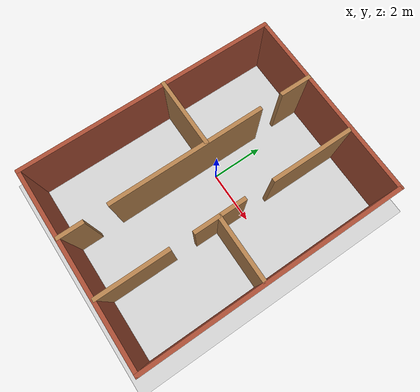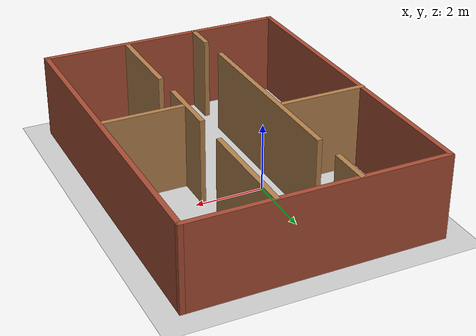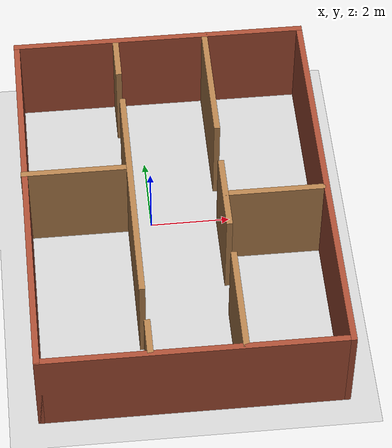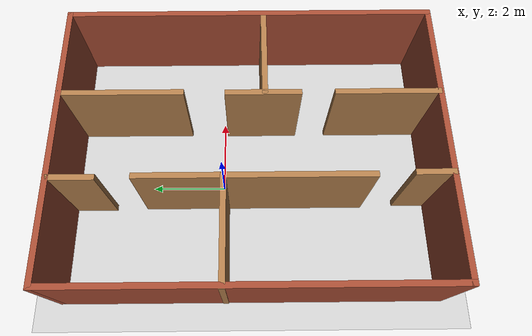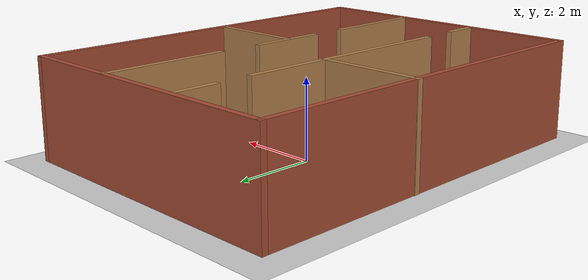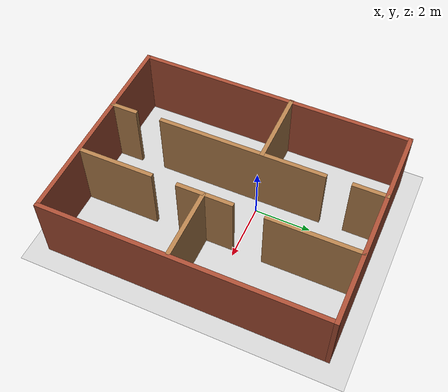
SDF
<sdf version="1.6">
 <world name="default">
  <light name="sun" type="directional">
   <pose>0 0 10 0 -0 0</pose>
   <diffuse>0.8 0.8 0.8 1</diffuse>
   <specular>0.2 0.2 0.2 1</specular>
   <attenuation>
    <range>1000</range>
    <constant>0.9</constant>
    <linear>0.01</linear>
    <quadratic>0.001</quadratic>
   </attenuation>
   <direction>-0.5 0.1 -0.9</direction>
  </light>
  <model name="ground_plane">
   <static>1</static>
   <link name="link">
    <collision name="collision">
     <geometry><plane><normal>0 0 1</normal><size>100 100</size></plane></geometry>
     <surface>
      <contact><collide_bitmask>65535</collide_bitmask></contact>
      <friction><ode><mu>100</mu><mu2>50</mu2></ode></friction>
     </surface>
    </collision>
    <visual name="visual">
     <cast_shadows>0</cast_shadows>
     <geometry><plane><normal>0 0 1</normal><size>100 100</size></plane></geometry>
     <material>
      <script><uri>file://media/materials/scripts/gazebo.material</uri><name>Gazebo/Grey</name></script>
     </material>
    </visual>
   </link>
  </model>
  <physics name="default_physics" default="0" type="ode">
   <real_time_update_rate>1000</real_time_update_rate>
   <max_step_size>0.001</max_step_size>
   <real_time_factor>1</real_time_factor>
   <ode>
    <solver>
     <type>quick</type>
     <iters>150</iters>
     <precon_iters>0</precon_iters>
     <sor>1.4</sor>
     <use_dynamic_moi_rescaling>1</use_dynamic_moi_rescaling>
    </solver>
    <constraints>
     <cfm>1e-05</cfm>
     <erp>0.2</erp>
     <contact_max_correcting_vel>2000</contact_max_correcting_vel>
     <contact_surface_layer>0.01</contact_surface_layer>
    </constraints>
   </ode>
  </physics>
  <gravity>0 0 -9.8</gravity>
  <magnetic_field>6e-06 2.3e-05 -4.2e-05</magnetic_field>
  <atmosphere type="adiabatic"/>
  <scene><ambient>0.4 0.4 0.4 1</ambient><background>0.7 0.7 0.7 1</background><shadows>1</shadows></scene>
  <spherical_coordinates>
   <surface_model>EARTH_WGS84</surface_model>
   <latitude_deg>0</latitude_deg>
   <longitude_deg>0</longitude_deg>
   <elevation>0</elevation>
   <heading_deg>0</heading_deg>
  </spherical_coordinates>
  <model name="woodbuilding">
   <pose>0.559038 -0.732635 0 0 -0 0</pose>
   <link name="Wall_0">
    <collision name="Wall_0_Collision">
     <geometry><box><size>10 0.15 2.5</size></box></geometry>
     <pose>0 0 1.25 0 -0 0</pose>
    </collision>
    <visual name="Wall_0_Visual">
     <pose>0 0 1.25 0 -0 0</pose>
     <geometry><box><size>10 0.15 2.5</size></box></geometry>
     <material>
      <script><uri>file://media/materials/scripts/gazebo.material</uri><name>Gazebo/Bricks</name></script>
      <ambient>1 1 1 1</ambient>
     </material>
     <meta><layer>0</layer></meta>
    </visual>
    <pose>-3.66563 0 0 0 0 -1.5708</pose>
   </link>
   <link name="Wall_11">
    <collision name="Wall_11_Collision">
     <geometry><box><size>1 0.15 2.5</size></box></geometry>
     <pose>0 0 1.25 0 -0 0</pose>
    </collision>
    <visual name="Wall_11_Visual">
     <pose>0 0 1.25 0 -0 0</pose>
     <geometry><box><size>1 0.15 2.5</size></box></geometry>
     <material>
      <script><uri>file://media/materials/scripts/gazebo.material</uri><name>Gazebo/Wood</name></script>
      <ambient>1 1 1 1</ambient>
     </material>
     <meta><layer>0</layer></meta>
    </visual>
    <pose>-1.03744 -4.47542 0 0 0 -1.5708</pose>
   </link>
   <link name="Wall_13">
    <collision name="Wall_13_Collision">
     <geometry><box><size>2.75 0.15 2.5</size></box></geometry>
     <pose>0 0 1.25 0 -0 0</pose>
    </collision>
    <visual name="Wall_13_Visual">
     <pose>0 0 1.25 0 -0 0</pose>
     <geometry><box><size>2.75 0.15 2.5</size></box></geometry>
     <material>
      <script><uri>file://media/materials/scripts/gazebo.material</uri><name>Gazebo/Wood</name></script>
      <ambient>1 1 1 1</ambient>
     </material>
     <meta><layer>0</layer></meta>
    </visual>
    <pose>-2.38437 0.662386 0 0 -0 0</pose>
   </link>
   <link name="Wall_15">
    <collision name="Wall_15_Collision">
     <geometry><box><size>3.25 0.15 2.5</size></box></geometry>
     <pose>0 0 1.25 0 -0 0</pose>
    </collision>
    <visual name="Wall_15_Visual">
     <pose>0 0 1.25 0 -0 0</pose>
     <geometry><box><size>3.25 0.15 2.5</size></box></geometry>
     <material>
      <script><uri>file://media/materials/scripts/gazebo.material</uri><name>Gazebo/Wood</name></script>
      <ambient>1 1 1 1</ambient>
     </material>
     <meta><layer>0</layer></meta>
    </visual>
    <pose>1.20501 3.3282 0 0 0 -1.5708</pose>
   </link>
   <link name="Wall_17">
    <collision name="Wall_17_Collision">
     <geometry><box><size>2.75 0.15 2.5</size></box></geometry>
     <pose>0 0 1.25 0 -0 0</pose>
    </collision>
    <visual name="Wall_17_Visual">
     <pose>0 0 1.25 0 -0 0</pose>
     <geometry><box><size>2.75 0.15 2.5</size></box></geometry>
     <material>
      <script><uri>file://media/materials/scripts/gazebo.material</uri><name>Gazebo/Wood</name></script>
      <ambient>1 1 1 1</ambient>
     </material>
     <meta><layer>0</layer></meta>
    </visual>
    <pose>1.18968 -3.5725 0 0 0 -1.5708</pose>
   </link>
   <link name="Wall_19">
    <collision name="Wall_19_Collision">
     <geometry><box><size>2 0.15 2.5</size></box></geometry>
     <pose>0 0 1.25 0 -0 0</pose>
    </collision>
    <visual name="Wall_19_Visual">
     <pose>0 0 1.25 0 -0 0</pose>
     <geometry><box><size>2 0.15 2.5</size></box></geometry>
     <material>
      <script><uri>file://media/materials/scripts/gazebo.material</uri><name>Gazebo/Wood</name></script>
      <ambient>1 1 1 1</ambient>
     </material>
     <meta><layer>0</layer></meta>
    </visual>
    <pose>1.18693 -0.34751 0 0 0 -1.5708</pose>
   </link>
   <link name="Wall_21">
    <collision name="Wall_21_Collision">
     <geometry><box><size>2.5 0.15 2.5</size></box></geometry>
     <pose>0 0 1.25 0 -0 0</pose>
    </collision>
    <visual name="Wall_21_Visual">
     <pose>0 0 1.25 0 -0 0</pose>
     <geometry><box><size>2.5 0.15 2.5</size></box></geometry>
     <material>
      <script><uri>file://media/materials/scripts/gazebo.material</uri><name>Gazebo/Wood</name></script>
      <ambient>1 1 1 1</ambient>
     </material>
     <meta><layer>0</layer></meta>
    </visual>
    <pose>2.39691 -0.391675 0 0 -0 0</pose>
   </link>
   <link name="Wall_3">
    <collision name="Wall_3_Collision">
     <geometry><box><size>7.5 0.15 2.5</size></box></geometry>
     <pose>0 0 1.25 0 -0 0</pose>
    </collision>
    <visual name="Wall_3_Visual">
     <pose>0 0 1.25 0 -0 0</pose>
     <geometry><box><size>7.5 0.15 2.5</size></box></geometry>
     <material>
      <script><uri>file://media/materials/scripts/gazebo.material</uri><name>Gazebo/Bricks</name></script>
      <ambient>1 1 1 1</ambient>
     </material>
     <meta><layer>0</layer></meta>
    </visual>
    <pose>0.009367 -4.925 0 0 -0 0</pose>
   </link>
   <link name="Wall_4">
    <collision name="Wall_4_Collision">
     <geometry><box><size>10 0.15 2.5</size></box></geometry>
     <pose>0 0 1.25 0 -0 0</pose>
    </collision>
    <visual name="Wall_4_Visual">
     <pose>0 0 1.25 0 -0 0</pose>
     <geometry><box><size>10 0.15 2.5</size></box></geometry>
     <material>
      <script><uri>file://media/materials/scripts/gazebo.material</uri><name>Gazebo/Bricks</name></script>
      <ambient>1 1 1 1</ambient>
     </material>
     <meta><layer>0</layer></meta>
    </visual>
    <pose>3.68437 0 0 0 -0 1.5708</pose>
   </link>
   <link name="Wall_5">
    <collision name="Wall_5_Collision">
     <geometry><box><size>7.5 0.15 2.5</size></box></geometry>
     <pose>0 0 1.25 0 -0 0</pose>
    </collision>
    <visual name="Wall_5_Visual">
     <pose>0 0 1.25 0 -0 0</pose>
     <geometry><box><size>7.5 0.15 2.5</size></box></geometry>
     <material>
      <script><uri>file://media/materials/scripts/gazebo.material</uri><name>Gazebo/Bricks</name></script>
      <ambient>1 1 1 1</ambient>
     </material>
     <meta><layer>0</layer></meta>
    </visual>
    <pose>0.009367 4.925 0 0 -0 3.14159</pose>
   </link>
   <link name="Wall_7">
    <collision name="Wall_7_Collision">
     <geometry><box><size>1.25 0.15 2.5</size></box></geometry>
     <pose>0 0 1.25 0 -0 0</pose>
    </collision>
    <visual name="Wall_7_Visual">
     <pose>0 0 1.25 0 -0 0</pose>
     <geometry><box><size>1.25 0.15 2.5</size></box></geometry>
     <material>
      <script><uri>file://media/materials/scripts/gazebo.material</uri><name>Gazebo/Wood</name></script>
      <ambient>1 1 1 1</ambient>
     </material>
     <meta><layer>0</layer></meta>
    </visual>
    <pose>-1.10824 4.36656 0 0 0 -1.5708</pose>
   </link>
   <link name="Wall_9">
    <collision name="Wall_9_Collision">
     <geometry><box><size>6 0.15 2.5</size></box></geometry>
     <pose>0 0 1.25 0 -0 0</pose>
    </collision>
    <visual name="Wall_9_Visual">
     <pose>0 0 1.25 0 -0 0</pose>
     <geometry><box><size>6 0.15 2.5</size></box></geometry>
     <material>
      <script><uri>file://media/materials/scripts/gazebo.material</uri><name>Gazebo/Wood</name></script>
      <ambient>1 1 1 1</ambient>
     </material>
     <meta><layer>0</layer></meta>
    </visual>
    <pose>-1.07946 -0.097416 0 0 0 -1.5708</pose>
   </link>
   <static>1</static>
  </model>
 </world>
</sdf>
